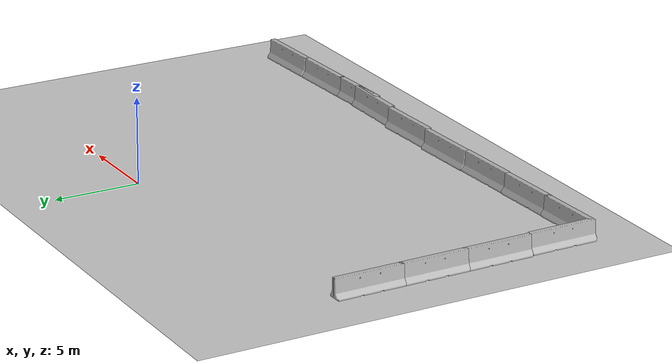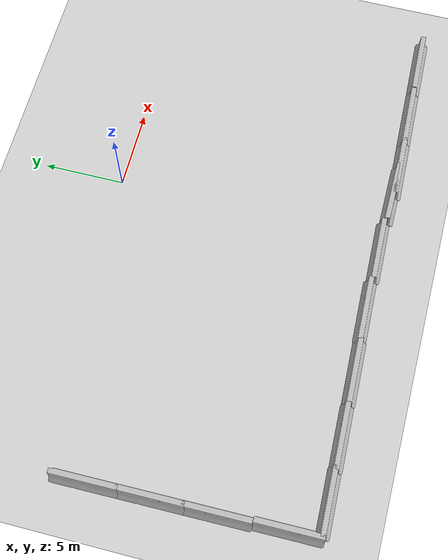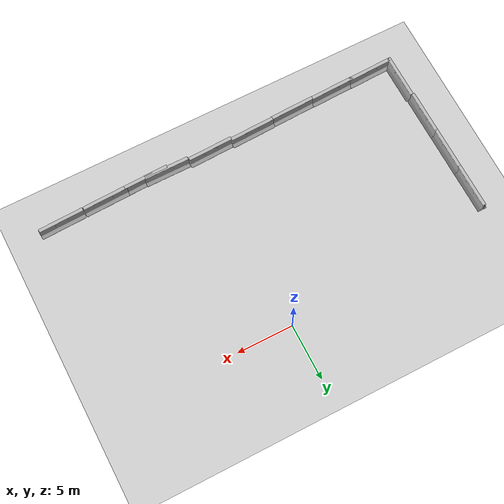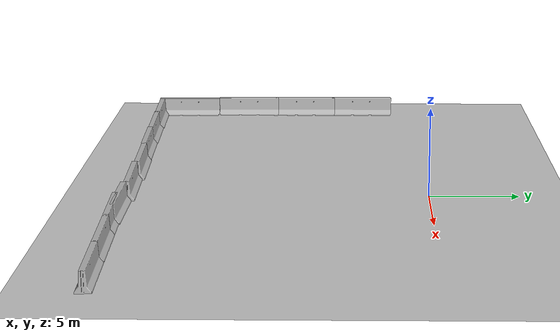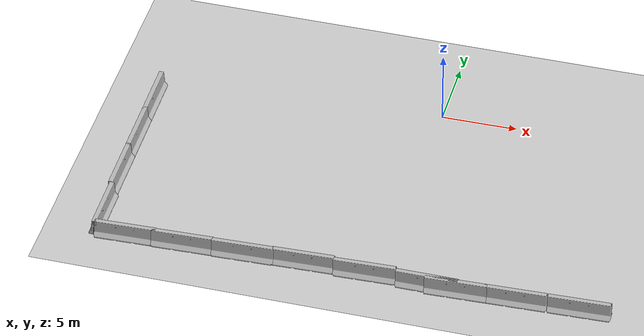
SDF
<sdf version="1.6">
 <world name="default">
  <model name="ground_plane">
   <static>1</static>
   <link name="link">
    <collision name="collision">
     <geometry><plane><normal>0 0 1</normal><size>100 100</size></plane></geometry>
     <surface><friction><ode><mu>100</mu><mu2>50</mu2></ode></friction></surface>
    </collision>
    <visual name="visual">
     <cast_shadows>0</cast_shadows>
     <geometry><plane><normal>0 0 1</normal><size>100 100</size></plane></geometry>
     <material>
      <script><uri>file://media/materials/scripts/gazebo.material</uri><name>Gazebo/Grey</name></script>
     </material>
    </visual>
   </link>
  </model>
  <model name="jersey_barrier">
   <static>1</static>
   <link name="link">
    <visual name="visual">
     <geometry>
      <mesh><uri>model://jersey_barrier/meshes/jersey_barrier.dae</uri><scale>1 1 1</scale></mesh>
     </geometry>
    </visual>
    <collision name="upright">
     <pose>0 0 0.5715 0 -0 0</pose>
     <geometry><box><size>4.06542 0.3063 1.143</size></box></geometry>
    </collision>
    <collision name="base">
     <pose>0 0 0.032258 0 -0 0</pose>
     <geometry><box><size>4.06542 0.8107 0.064516</size></box></geometry>
    </collision>
    <collision name="base2">
     <pose>0 0 0.1 0 -0 0</pose>
     <geometry><box><size>4.06542 0.65 0.1</size></box></geometry>
    </collision>
    <collision name="base3">
     <pose>0 0 0.2 0 -0 0</pose>
     <geometry><box><size>4.06542 0.5 0.1</size></box></geometry>
    </collision>
    <collision name="left-angle">
     <pose>0 -0.224 0.2401 0.9 -0 0</pose>
     <geometry><box><size>4.06542 0.5 0.064516</size></box></geometry>
    </collision>
    <collision name="right-angle">
     <pose>0 0.224 0.2401 -0.9 0 0</pose>
     <geometry><box><size>4.06542 0.5 0.064516</size></box></geometry>
    </collision>
   </link>
   <pose>-0.913416 -16.6952 0 0 -0 0.033275</pose>
  </model>
  <model name="jersey_barrier_clone">
   <static>1</static>
   <link name="link">
    <visual name="visual">
     <geometry>
      <mesh><uri>model://jersey_barrier/meshes/jersey_barrier.dae</uri><scale>1 1 1</scale></mesh>
     </geometry>
    </visual>
    <collision name="upright">
     <pose>0 0 0.5715 0 -0 0</pose>
     <geometry><box><size>4.06542 0.3063 1.143</size></box></geometry>
    </collision>
    <collision name="base">
     <pose>0 0 0.032258 0 -0 0</pose>
     <geometry><box><size>4.06542 0.8107 0.064516</size></box></geometry>
    </collision>
    <collision name="base2">
     <pose>0 0 0.1 0 -0 0</pose>
     <geometry><box><size>4.06542 0.65 0.1</size></box></geometry>
    </collision>
    <collision name="base3">
     <pose>0 0 0.2 0 -0 0</pose>
     <geometry><box><size>4.06542 0.5 0.1</size></box></geometry>
    </collision>
    <collision name="left-angle">
     <pose>0 -0.224 0.2401 0.9 -0 0</pose>
     <geometry><box><size>4.06542 0.5 0.064516</size></box></geometry>
    </collision>
    <collision name="right-angle">
     <pose>0 0.224 0.2401 -0.9 0 0</pose>
     <geometry><box><size>4.06542 0.5 0.064516</size></box></geometry>
    </collision>
   </link>
   <pose>5.06368 -16.8524 0 0 -0 0.033275</pose>
  </model>
  <model name="jersey_barrier_clone_clone">
   <static>1</static>
   <link name="link">
    <visual name="visual">
     <geometry>
      <mesh><uri>model://jersey_barrier/meshes/jersey_barrier.dae</uri><scale>1 1 1</scale></mesh>
     </geometry>
    </visual>
    <collision name="upright">
     <pose>0 0 0.5715 0 -0 0</pose>
     <geometry><box><size>4.06542 0.3063 1.143</size></box></geometry>
    </collision>
    <collision name="base">
     <pose>0 0 0.032258 0 -0 0</pose>
     <geometry><box><size>4.06542 0.8107 0.064516</size></box></geometry>
    </collision>
    <collision name="base2">
     <pose>0 0 0.1 0 -0 0</pose>
     <geometry><box><size>4.06542 0.65 0.1</size></box></geometry>
    </collision>
    <collision name="base3">
     <pose>0 0 0.2 0 -0 0</pose>
     <geometry><box><size>4.06542 0.5 0.1</size></box></geometry>
    </collision>
    <collision name="left-angle">
     <pose>0 -0.224 0.2401 0.9 -0 0</pose>
     <geometry><box><size>4.06542 0.5 0.064516</size></box></geometry>
    </collision>
    <collision name="right-angle">
     <pose>0 0.224 0.2401 -0.9 0 0</pose>
     <geometry><box><size>4.06542 0.5 0.064516</size></box></geometry>
    </collision>
   </link>
   <pose>-4.93978 -16.7019 0 0 -0 0.033275</pose>
  </model>
  <model name="jersey_barrier_clone_clone_0">
   <static>1</static>
   <link name="link">
    <visual name="visual">
     <geometry>
      <mesh><uri>model://jersey_barrier/meshes/jersey_barrier.dae</uri><scale>1 1 1</scale></mesh>
     </geometry>
    </visual>
    <collision name="upright">
     <pose>0 0 0.5715 0 -0 0</pose>
     <geometry><box><size>4.06542 0.3063 1.143</size></box></geometry>
    </collision>
    <collision name="base">
     <pose>0 0 0.032258 0 -0 0</pose>
     <geometry><box><size>4.06542 0.8107 0.064516</size></box></geometry>
    </collision>
    <collision name="base2">
     <pose>0 0 0.1 0 -0 0</pose>
     <geometry><box><size>4.06542 0.65 0.1</size></box></geometry>
    </collision>
    <collision name="base3">
     <pose>0 0 0.2 0 -0 0</pose>
     <geometry><box><size>4.06542 0.5 0.1</size></box></geometry>
    </collision>
    <collision name="left-angle">
     <pose>0 -0.224 0.2401 0.9 -0 0</pose>
     <geometry><box><size>4.06542 0.5 0.064516</size></box></geometry>
    </collision>
    <collision name="right-angle">
     <pose>0 0.224 0.2401 -0.9 0 0</pose>
     <geometry><box><size>4.06542 0.5 0.064516</size></box></geometry>
    </collision>
   </link>
   <pose>8.87687 -16.7227 0 0 -0 0.033275</pose>
  </model>
  <model name="jersey_barrier_clone_clone_1">
   <static>1</static>
   <link name="link">
    <visual name="visual">
     <geometry>
      <mesh><uri>model://jersey_barrier/meshes/jersey_barrier.dae</uri><scale>1 1 1</scale></mesh>
     </geometry>
    </visual>
    <collision name="upright">
     <pose>0 0 0.5715 0 -0 0</pose>
     <geometry><box><size>4.06542 0.3063 1.143</size></box></geometry>
    </collision>
    <collision name="base">
     <pose>0 0 0.032258 0 -0 0</pose>
     <geometry><box><size>4.06542 0.8107 0.064516</size></box></geometry>
    </collision>
    <collision name="base2">
     <pose>0 0 0.1 0 -0 0</pose>
     <geometry><box><size>4.06542 0.65 0.1</size></box></geometry>
    </collision>
    <collision name="base3">
     <pose>0 0 0.2 0 -0 0</pose>
     <geometry><box><size>4.06542 0.5 0.1</size></box></geometry>
    </collision>
    <collision name="left-angle">
     <pose>0 -0.224 0.2401 0.9 -0 0</pose>
     <geometry><box><size>4.06542 0.5 0.064516</size></box></geometry>
    </collision>
    <collision name="right-angle">
     <pose>0 0.224 0.2401 -0.9 0 0</pose>
     <geometry><box><size>4.06542 0.5 0.064516</size></box></geometry>
    </collision>
   </link>
   <pose>12.9707 -16.5908 0 0 -0 0.033275</pose>
  </model>
  <model name="jersey_barrier_clone_clone_clone_0">
   <static>1</static>
   <link name="link">
    <visual name="visual">
     <geometry>
      <mesh><uri>model://jersey_barrier/meshes/jersey_barrier.dae</uri><scale>1 1 1</scale></mesh>
     </geometry>
    </visual>
    <collision name="upright">
     <pose>0 0 0.5715 0 -0 0</pose>
     <geometry><box><size>4.06542 0.3063 1.143</size></box></geometry>
    </collision>
    <collision name="base">
     <pose>0 0 0.032258 0 -0 0</pose>
     <geometry><box><size>4.06542 0.8107 0.064516</size></box></geometry>
    </collision>
    <collision name="base2">
     <pose>0 0 0.1 0 -0 0</pose>
     <geometry><box><size>4.06542 0.65 0.1</size></box></geometry>
    </collision>
    <collision name="base3">
     <pose>0 0 0.2 0 -0 0</pose>
     <geometry><box><size>4.06542 0.5 0.1</size></box></geometry>
    </collision>
    <collision name="left-angle">
     <pose>0 -0.224 0.2401 0.9 -0 0</pose>
     <geometry><box><size>4.06542 0.5 0.064516</size></box></geometry>
    </collision>
    <collision name="right-angle">
     <pose>0 0.224 0.2401 -0.9 0 0</pose>
     <geometry><box><size>4.06542 0.5 0.064516</size></box></geometry>
    </collision>
   </link>
   <pose>-8.88852 -16.868 0 0 -0 0.033275</pose>
  </model>
  <model name="jersey_barrier_clone_clone_clone_2">
   <static>1</static>
   <link name="link">
    <visual name="visual">
     <geometry>
      <mesh><uri>model://jersey_barrier/meshes/jersey_barrier.dae</uri><scale>1 1 1</scale></mesh>
     </geometry>
    </visual>
    <collision name="upright">
     <pose>0 0 0.5715 0 -0 0</pose>
     <geometry><box><size>4.06542 0.3063 1.143</size></box></geometry>
    </collision>
    <collision name="base">
     <pose>0 0 0.032258 0 -0 0</pose>
     <geometry><box><size>4.06542 0.8107 0.064516</size></box></geometry>
    </collision>
    <collision name="base2">
     <pose>0 0 0.1 0 -0 0</pose>
     <geometry><box><size>4.06542 0.65 0.1</size></box></geometry>
    </collision>
    <collision name="base3">
     <pose>0 0 0.2 0 -0 0</pose>
     <geometry><box><size>4.06542 0.5 0.1</size></box></geometry>
    </collision>
    <collision name="left-angle">
     <pose>0 -0.224 0.2401 0.9 -0 0</pose>
     <geometry><box><size>4.06542 0.5 0.064516</size></box></geometry>
    </collision>
    <collision name="right-angle">
     <pose>0 0.224 0.2401 -0.9 0 0</pose>
     <geometry><box><size>4.06542 0.5 0.064516</size></box></geometry>
    </collision>
   </link>
   <pose>-12.8673 -16.9656 0 0 -0 0.033275</pose>
  </model>
  <model name="jersey_barrier_clone_clone_clone_3_clone_clone_1_clone_0_clone_3">
   <static>1</static>
   <link name="link">
    <visual name="visual">
     <geometry>
      <mesh><uri>model://jersey_barrier/meshes/jersey_barrier.dae</uri><scale>1 1 1</scale></mesh>
     </geometry>
    </visual>
    <collision name="upright">
     <pose>0 0 0.5715 0 -0 0</pose>
     <geometry><box><size>4.06542 0.3063 1.143</size></box></geometry>
    </collision>
    <collision name="base">
     <pose>0 0 0.032258 0 -0 0</pose>
     <geometry><box><size>4.06542 0.8107 0.064516</size></box></geometry>
    </collision>
    <collision name="base2">
     <pose>0 0 0.1 0 -0 0</pose>
     <geometry><box><size>4.06542 0.65 0.1</size></box></geometry>
    </collision>
    <collision name="base3">
     <pose>0 0 0.2 0 -0 0</pose>
     <geometry><box><size>4.06542 0.5 0.1</size></box></geometry>
    </collision>
    <collision name="left-angle">
     <pose>0 -0.224 0.2401 0.9 -0 0</pose>
     <geometry><box><size>4.06542 0.5 0.064516</size></box></geometry>
    </collision>
    <collision name="right-angle">
     <pose>0 0.224 0.2401 -0.9 0 0</pose>
     <geometry><box><size>4.06542 0.5 0.064516</size></box></geometry>
    </collision>
   </link>
   <pose>-18.8885 -3.54912 0 0 0 -1.5622</pose>
  </model>
  <model name="jersey_barrier_clone_clone_clone_3_clone_clone_1_clone_0_clone_4">
   <static>1</static>
   <link name="link">
    <visual name="visual">
     <geometry>
      <mesh><uri>model://jersey_barrier/meshes/jersey_barrier.dae</uri><scale>1 1 1</scale></mesh>
     </geometry>
    </visual>
    <collision name="upright">
     <pose>0 0 0.5715 0 -0 0</pose>
     <geometry><box><size>4.06542 0.3063 1.143</size></box></geometry>
    </collision>
    <collision name="base">
     <pose>0 0 0.032258 0 -0 0</pose>
     <geometry><box><size>4.06542 0.8107 0.064516</size></box></geometry>
    </collision>
    <collision name="base2">
     <pose>0 0 0.1 0 -0 0</pose>
     <geometry><box><size>4.06542 0.65 0.1</size></box></geometry>
    </collision>
    <collision name="base3">
     <pose>0 0 0.2 0 -0 0</pose>
     <geometry><box><size>4.06542 0.5 0.1</size></box></geometry>
    </collision>
    <collision name="left-angle">
     <pose>0 -0.224 0.2401 0.9 -0 0</pose>
     <geometry><box><size>4.06542 0.5 0.064516</size></box></geometry>
    </collision>
    <collision name="right-angle">
     <pose>0 0.224 0.2401 -0.9 0 0</pose>
     <geometry><box><size>4.06542 0.5 0.064516</size></box></geometry>
    </collision>
   </link>
   <pose>-18.8515 -7.38298 0 0 0 -1.5622</pose>
  </model>
  <model name="jersey_barrier_clone_clone_clone_3_clone_clone_1_clone_0_clone_5">
   <static>1</static>
   <link name="link">
    <visual name="visual">
     <geometry>
      <mesh><uri>model://jersey_barrier/meshes/jersey_barrier.dae</uri><scale>1 1 1</scale></mesh>
     </geometry>
    </visual>
    <collision name="upright">
     <pose>0 0 0.5715 0 -0 0</pose>
     <geometry><box><size>4.06542 0.3063 1.143</size></box></geometry>
    </collision>
    <collision name="base">
     <pose>0 0 0.032258 0 -0 0</pose>
     <geometry><box><size>4.06542 0.8107 0.064516</size></box></geometry>
    </collision>
    <collision name="base2">
     <pose>0 0 0.1 0 -0 0</pose>
     <geometry><box><size>4.06542 0.65 0.1</size></box></geometry>
    </collision>
    <collision name="base3">
     <pose>0 0 0.2 0 -0 0</pose>
     <geometry><box><size>4.06542 0.5 0.1</size></box></geometry>
    </collision>
    <collision name="left-angle">
     <pose>0 -0.224 0.2401 0.9 -0 0</pose>
     <geometry><box><size>4.06542 0.5 0.064516</size></box></geometry>
    </collision>
    <collision name="right-angle">
     <pose>0 0.224 0.2401 -0.9 0 0</pose>
     <geometry><box><size>4.06542 0.5 0.064516</size></box></geometry>
    </collision>
   </link>
   <pose>-18.8143 -11.2174 0 0 0 -1.5622</pose>
  </model>
  <model name="jersey_barrier_clone_clone_clone_3_clone_clone_1_clone_0_clone_6">
   <static>1</static>
   <link name="link">
    <visual name="visual">
     <geometry>
      <mesh><uri>model://jersey_barrier/meshes/jersey_barrier.dae</uri><scale>1 1 1</scale></mesh>
     </geometry>
    </visual>
    <collision name="upright">
     <pose>0 0 0.5715 0 -0 0</pose>
     <geometry><box><size>4.06542 0.3063 1.143</size></box></geometry>
    </collision>
    <collision name="base">
     <pose>0 0 0.032258 0 -0 0</pose>
     <geometry><box><size>4.06542 0.8107 0.064516</size></box></geometry>
    </collision>
    <collision name="base2">
     <pose>0 0 0.1 0 -0 0</pose>
     <geometry><box><size>4.06542 0.65 0.1</size></box></geometry>
    </collision>
    <collision name="base3">
     <pose>0 0 0.2 0 -0 0</pose>
     <geometry><box><size>4.06542 0.5 0.1</size></box></geometry>
    </collision>
    <collision name="left-angle">
     <pose>0 -0.224 0.2401 0.9 -0 0</pose>
     <geometry><box><size>4.06542 0.5 0.064516</size></box></geometry>
    </collision>
    <collision name="right-angle">
     <pose>0 0.224 0.2401 -0.9 0 0</pose>
     <geometry><box><size>4.06542 0.5 0.064516</size></box></geometry>
    </collision>
   </link>
   <pose>-18.6779 -15.2602 0 0 0 -1.5622</pose>
  </model>
  <model name="jersey_barrier_clone_clone_clone_2_clone">
   <static>1</static>
   <link name="link">
    <visual name="visual">
     <geometry>
      <mesh><uri>model://jersey_barrier/meshes/jersey_barrier.dae</uri><scale>1 1 1</scale></mesh>
     </geometry>
    </visual>
    <collision name="upright">
     <pose>0 0 0.5715 0 -0 0</pose>
     <geometry><box><size>4.06542 0.3063 1.143</size></box></geometry>
    </collision>
    <collision name="base">
     <pose>0 0 0.032258 0 -0 0</pose>
     <geometry><box><size>4.06542 0.8107 0.064516</size></box></geometry>
    </collision>
    <collision name="base2">
     <pose>0 0 0.1 0 -0 0</pose>
     <geometry><box><size>4.06542 0.65 0.1</size></box></geometry>
    </collision>
    <collision name="base3">
     <pose>0 0 0.2 0 -0 0</pose>
     <geometry><box><size>4.06542 0.5 0.1</size></box></geometry>
    </collision>
    <collision name="left-angle">
     <pose>0 -0.224 0.2401 0.9 -0 0</pose>
     <geometry><box><size>4.06542 0.5 0.064516</size></box></geometry>
    </collision>
    <collision name="right-angle">
     <pose>0 0.224 0.2401 -0.9 0 0</pose>
     <geometry><box><size>4.06542 0.5 0.064516</size></box></geometry>
    </collision>
   </link>
   <pose>-16.6367 -17.055 0 0 -0 0.033275</pose>
  </model>
  <model name="jersey_barrier_clone_0">
   <static>1</static>
   <link name="link">
    <visual name="visual">
     <geometry>
      <mesh><uri>model://jersey_barrier/meshes/jersey_barrier.dae</uri><scale>1 1 1</scale></mesh>
     </geometry>
    </visual>
    <collision name="upright">
     <pose>0 0 0.5715 0 -0 0</pose>
     <geometry><box><size>4.06542 0.3063 1.143</size></box></geometry>
    </collision>
    <collision name="base">
     <pose>0 0 0.032258 0 -0 0</pose>
     <geometry><box><size>4.06542 0.8107 0.064516</size></box></geometry>
    </collision>
    <collision name="base2">
     <pose>0 0 0.1 0 -0 0</pose>
     <geometry><box><size>4.06542 0.65 0.1</size></box></geometry>
    </collision>
    <collision name="base3">
     <pose>0 0 0.2 0 -0 0</pose>
     <geometry><box><size>4.06542 0.5 0.1</size></box></geometry>
    </collision>
    <collision name="left-angle">
     <pose>0 -0.224 0.2401 0.9 -0 0</pose>
     <geometry><box><size>4.06542 0.5 0.064516</size></box></geometry>
    </collision>
    <collision name="right-angle">
     <pose>0 0.224 0.2401 -0.9 0 0</pose>
     <geometry><box><size>4.06542 0.5 0.064516</size></box></geometry>
    </collision>
   </link>
   <pose>3.17006 -16.7915 0 0 0 -0.002345</pose>
  </model>
 </world>
</sdf>
